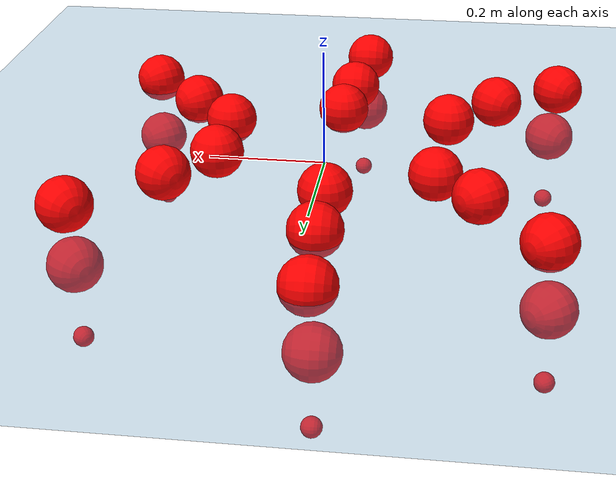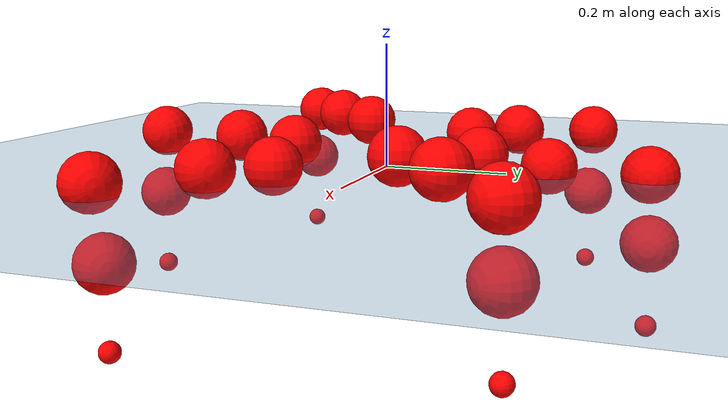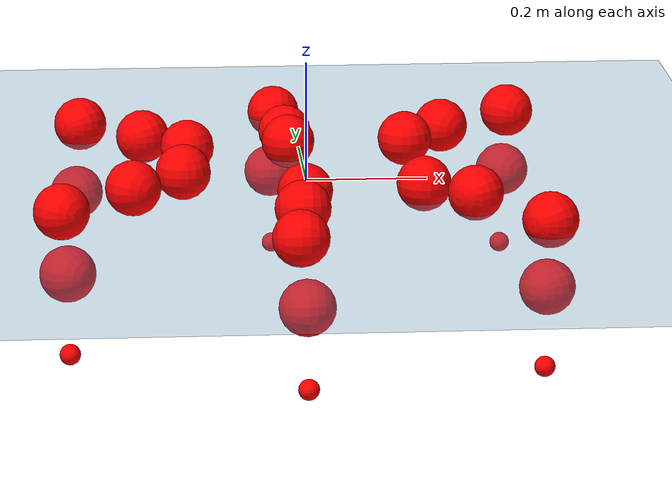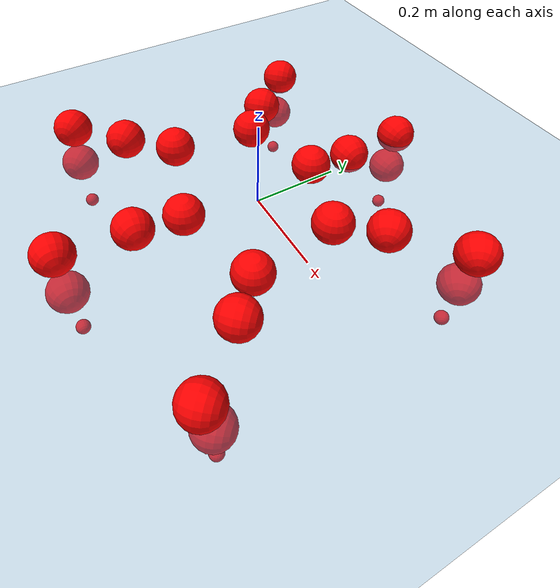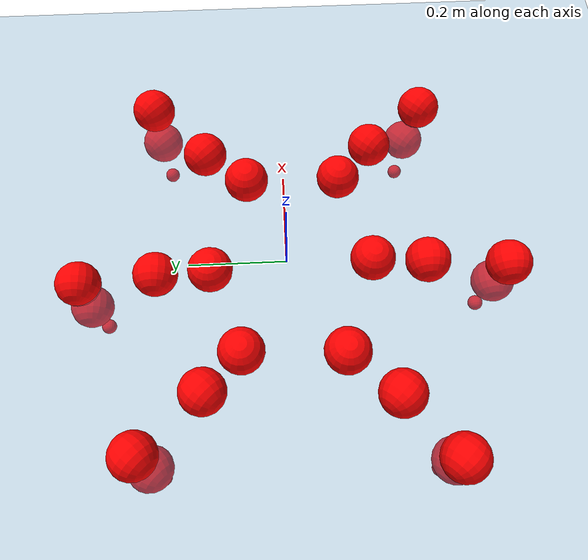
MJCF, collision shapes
<mujoco model="Golem">
  <compiler angle="radian" assetdir="assets" balanceinertia="true" inertiafromgeom="false"/>

  <option timestep="0.005" density="1.2" viscosity="2e-05"/>

  <size nkey="1"/>

  <visual>
    <quality shadowsize="8192"/>
    <map shadowclip="0.5"/>
  </visual>

  <default>
    <default class="/">
      <joint armature="0.01" damping="0.01" frictionloss="0.01"/>
      <geom contype="0" conaffinity="0" group="1" solref="-1000 -80"/>
      <site size="0.01 0.005 0.005" group="5"/>
      <general forcelimited="true" biastype="affine" gainprm="25" biasprm="0 -25 -0.5"/>
      <default class="visual">
        <geom type="mesh" group="2"/>
      </default>
      <default class="collision">
        <geom group="3"/>
      </default>
      <default class="foot">
        <geom size="0.01 0 0" condim="6" group="4" priority="1" solimp="0.015 1 0.01"/>
      </default>
      <default class="reward_collision_sphere">
        <geom group="5" rgba="1 0 0 1"/>
      </default>
    </default>
  </default>

  <asset>
    <texture type="skybox" colorspace="auto" name="//unnamed_texture_0" builtin="gradient" rgb1="0.95 0.95 0.95" rgb2="0.95 0.95 0.95" width="100" height="600"/>
    <texture type="2d" colorspace="auto" name="texplane" builtin="checker" rgb1="0.345 0.575 0.748" rgb2="0.345 0.575 0.748" markrgb="1 1 1" width="512" height="512"/>
    <material name="MatPlane" class="/" texture="texplane" texuniform="true" texrepeat="2 2" specular="0.9"/>
    <mesh name="body" class="/" file="body.stl" scale="0.001 0.001 0.001"/>
    <mesh name="coxa" class="/" file="coxa.stl" scale="0.001 0.001 0.001"/>
    <mesh name="femur" class="/" file="femur.stl" scale="0.001 0.001 0.001"/>
    <mesh name="tibia" class="/" file="tibia.stl" scale="0.001 0.001 0.001"/>
    <mesh name="tarsus" class="/" file="tarsus.stl" scale="0.001 0.001 0.001"/>
  </asset>

  <worldbody>
    <geom name="floor" class="/" size="100 100 0.125" type="plane" group="0" material="MatPlane"/>
    <light name="toplight_shadow" class="/" pos="0 0 5" dir="0.0990148 0.0990148 -0.990148" type="directional" ambient="0.04 0.04 0.04" diffuse="0.55 0.55 0.55" specular="0.12 0.12 0.12"/>
    <light name="toplight_fill" class="/" pos="0 0 5" dir="0.0990148 0.0990148 -0.990148" type="directional" castshadow="false" ambient="0.04 0.04 0.04" diffuse="0.3 0.3 0.3" specular="0.08 0.08 0.08"/>
    <body name="trunk" pos="-0.012219 -0.00710079 -0.00643023" quat="1 0.000127566 -7.70762e-05 -4.27267e-05">
      <inertial pos="-0.00287928 -0.00165353 -0.00353341" quat="0.999987 -0.00262159 0.00440428 -0.000349751" mass="5.48666" diaginertia="0.0373359 0.0752932 0.0011468"/>
      <joint name="//unnamed_joint_0" type="free"/>
      <geom name="//unnamed_geom_1" class="/" pos="0 0 0.0415468" quat="1 0 0 0" type="mesh" rgba="0.9 0.9 0.9 1" mesh="body"/>
      <site name="imu" class="/" pos="0.105454 -0.0543369 0.0484443" size="0.0112561"/>
      <camera name="track" class="/" pos="0 -2.96171 0" quat="0.707107 0.707107 0 0" mode="trackcom"/>
      <camera name="ego_camera" class="/" pos="0.162086 0 0.0649168" quat="-0.5 -0.5 0.5 0.5"/>
      <body name="coxa_RR" pos="-0.221633 -0.123058 0.0538351" quat="0.382684 -5.4154e-05 6.74325e-05 -0.923879">
        <inertial pos="-0.00153707 0.0129253 0.00526362" quat="0.99909 -0.00763993 -0.0400576 0.0124696" mass="0.323771" diaginertia="0.0325218 0.0770745 0.0012563"/>
        <joint name="coxa_joint_RR" class="/" pos="0 0 0" axis="-0.0221005 -0.0146265 -0.999649" stiffness="0.0557536" range="-3.16123 3.15708" armature="0.0165202" damping="0.0268821" frictionloss="0.0111305"/>
        <geom name="//unnamed_geom_2" class="/" type="mesh" rgba="0.2 0.2 0.2 1" mesh="coxa"/>
        <geom name="//unnamed_geom_3" class="reward_collision_sphere" size="0.0450245" pos="-0.0374044 0 0"/>
        <body name="femur_RR" pos="0.085697 0.0061034 0.00104372" quat="0.500448 -0.499733 0.500166 0.499653">
          <inertial pos="0.00574231 0.00449399 -0.00114804" quat="0.999851 0.00701224 -0.012299 -0.0099008" mass="0.291933" diaginertia="0.0306437 0.0696037 0.000971835"/>
          <joint name="femur_joint_RR" class="/" pos="0 0 0" axis="0.0109866 -0.0104579 -0.999885" stiffness="0.0574481" range="-2.92466 3.30622" armature="0.0128342" damping="0.00861352" frictionloss="0.005548"/>
          <geom name="//unnamed_geom_4" class="/" type="mesh" rgba="0.9 0.9 0.9 1" mesh="femur"/>
          <geom name="//unnamed_geom_5" class="reward_collision_sphere" size="0.0450245"/>
          <body name="tibia_RR" pos="0.00852586 -0.148275 -0.0131182" quat="-0.000789472 0.99998 0.00111217 0.00621527">
            <inertial pos="0.0107893 0.00168097 -0.0015148" quat="0.999985 -0.00515529 -0.00186621 0.00085048" mass="0.274222" diaginertia="0.0329296 0.0805088 0.00137467"/>
            <joint name="tibia_joint_RR" class="/" pos="0 0 0" axis="-0.0250609 0.0466283 0.998598" range="-3.24557 2.99139" armature="0.0119462" damping="0.0279026" frictionloss="0.0114233"/>
            <geom name="//unnamed_geom_6" class="/" type="mesh" rgba="0.2 0.2 0.2 1" mesh="tibia"/>
            <geom name="//unnamed_geom_7" class="reward_collision_sphere" size="0.0450245"/>
            <body name="tarsus_RR" pos="0.100134 0.000307128 -0.0102908" quat="1 -9.99225e-05 1.13603e-05 0.000174345">
              <inertial pos="0.064265 0.00101603 -0.00558017" quat="0.491462 0.510253 0.499296 0.498809" mass="0.288058" diaginertia="0.0295166 0.0674079 0.00117183"/>
              <joint name="tarsus_joint_RR" class="/" pos="0 0 0" axis="-0.00251635 -0.00109889 0.999996" range="-2.92615 2.98405" armature="0.0129135" damping="0.0322051" frictionloss="0.0144969"/>
              <geom name="//unnamed_geom_8" class="/" type="mesh" rgba="0.9 0.9 0.9 1" mesh="tarsus"/>
              <geom name="foot_1" class="foot" size="0.0112752" pos="0.139643 0 0" quat="0 -0.707107 0 0.707107"/>
              <geom name="//unnamed_geom_10" class="reward_collision_sphere" size="0.0450245"/>
              <geom name="//unnamed_geom_11" class="reward_collision_sphere" size="0.0168842" pos="0.134033 0 0"/>
              <site name="foot_1" class="foot" pos="0.139643 0 0" quat="0 -0.707107 0 0.707107" size="0.0112561"/>
            </body>
          </body>
        </body>
      </body>
      <body name="coxa_RM" pos="-0.00125051 -0.201171 0.0378464" quat="0.706662 0.00274536 -0.00255523 -0.707541">
        <inertial pos="-0.0087697 0.00100836 0.00552182" quat="0.999632 -0.00192639 -0.00178834 -0.0270064" mass="0.299947" diaginertia="0.0321009 0.0814069 0.00102377"/>
        <joint name="coxa_joint_RM" class="/" pos="0 0 0" axis="0.00137413 0.0106031 -0.999943" range="-3.05157 3.104" armature="0.0101539" damping="0.0514615" frictionloss="0.0191346"/>
        <geom name="//unnamed_geom_12" class="/" type="mesh" rgba="0.2 0.2 0.2 1" mesh="coxa"/>
        <geom name="//unnamed_geom_13" class="reward_collision_sphere" size="0.0450245" pos="-0.0374044 0 0"/>
        <body name="femur_RM" pos="0.0705479 -0.0101923 0.00373772" quat="0.504238 -0.498216 0.496438 0.501073">
          <inertial pos="-0.00239699 0.00485143 0.00021331" quat="0.999791 -0.0168589 -0.00558098 0.010167" mass="0.236576" diaginertia="0.0251109 0.0670392 0.00098374"/>
          <joint name="femur_joint_RM" class="/" pos="0 0 0" axis="-0.0141894 -0.0327333 -0.999363" range="-3.13943 3.11592" armature="0.0145058" damping="0" frictionloss="0.0110895"/>
          <geom name="//unnamed_geom_14" class="/" type="mesh" rgba="0.9 0.9 0.9 1" mesh="femur"/>
          <geom name="//unnamed_geom_15" class="reward_collision_sphere" size="0.0450245"/>
          <body name="tibia_RM" pos="0.00112741 -0.159216 -0.0127187" quat="7.8659e-05 1 0.000105572 -0.000311373">
            <inertial pos="-0.00811404 0.0126042 0.00140323" quat="0.998473 0.025483 0.0476191 0.0116447" mass="0.340897" diaginertia="0.0312102 0.0627617 0.00123293"/>
            <joint name="tibia_joint_RM" class="/" pos="0 0 0" axis="-0.00626633 -0.00642513 0.99996" stiffness="0.00112851" range="-2.91795 2.8606" armature="0.0118493" damping="0.0188641" frictionloss="0.00993865"/>
            <geom name="//unnamed_geom_16" class="/" type="mesh" rgba="0.2 0.2 0.2 1" mesh="tibia"/>
            <geom name="//unnamed_geom_17" class="reward_collision_sphere" size="0.0450245"/>
            <body name="tarsus_RM" pos="0.111992 0.00180336 -0.00781424" quat="1 0.000322243 -0.000336553 0.000403454">
              <inertial pos="0.0729203 0.00798554 -0.00908986" quat="0.548967 0.469189 0.502335 0.47556" mass="0.239247" diaginertia="0.0339944 0.0771061 0.00128161"/>
              <joint name="tarsus_joint_RM" class="/" pos="0 0 0" axis="-0.000274546 -0.000279866 1" stiffness="0.0413612" range="-3.29184 3.19941" armature="0.00843159" damping="0" frictionloss="0.0104503"/>
              <geom name="//unnamed_geom_18" class="/" type="mesh" rgba="0.9 0.9 0.9 1" mesh="tarsus"/>
              <geom name="foot_2" class="foot" size="0.0100651" pos="0.139643 0 0" quat="0 -0.707107 0 0.707107"/>
              <geom name="//unnamed_geom_20" class="reward_collision_sphere" size="0.0450245"/>
              <geom name="//unnamed_geom_21" class="reward_collision_sphere" size="0.0168842" pos="0.134033 0 0"/>
              <site name="foot_2" class="foot" pos="0.139643 0 0" quat="0 -0.707107 0 0.707107" size="0.0112561"/>
            </body>
          </body>
        </body>
      </body>
      <body name="coxa_RF" pos="0.223106 -0.135453 0.0308279" quat="0.923951 -0.000127794 -0.000501906 -0.382512">
        <inertial pos="0.00354434 -0.00657781 0.000916076" quat="0.999996 0.00218765 -0.00188047 -0.00054452" mass="0.281561" diaginertia="0.0299906 0.0664522 0.00120634"/>
        <joint name="coxa_joint_RF" class="/" pos="0 0 0" axis="-0.00011988 -0.000357882 -1" stiffness="0.00701341" range="-3.11816 3.08619" armature="0.00547175" damping="0.0088801" frictionloss="0.0114655"/>
        <geom name="//unnamed_geom_22" class="/" type="mesh" rgba="0.2 0.2 0.2 1" mesh="coxa"/>
        <geom name="//unnamed_geom_23" class="reward_collision_sphere" size="0.0450245" pos="-0.0374044 0 0"/>
        <body name="femur_RF" pos="0.0681146 0.00227912 0.00408847" quat="0.498693 -0.499463 0.501505 0.500335">
          <inertial pos="-0.00484369 0.00772221 0.000990096" quat="0.999678 -0.0119241 -0.0168182 0.0148193" mass="0.307724" diaginertia="0.0299821 0.0832419 0.00105607"/>
          <joint name="femur_joint_RF" class="/" pos="0 0 0" axis="0.00509592 0.00104531 -0.999986" range="-2.8885 3.06793" armature="0.0176718" damping="0.00297922" frictionloss="0.00596779"/>
          <geom name="//unnamed_geom_24" class="/" type="mesh" rgba="0.9 0.9 0.9 1" mesh="femur"/>
          <geom name="//unnamed_geom_25" class="reward_collision_sphere" size="0.0450245"/>
          <body name="tibia_RF" pos="0.00938292 -0.161838 -0.0131682" quat="-6.18854e-05 1 -0.000584012 0.000245116">
            <inertial pos="0.0130093 -0.000319702 0.00194088" quat="1 7.88576e-05 -0.000121281 4.30363e-05" mass="0.237621" diaginertia="0.0319536 0.0628449 0.00112952"/>
            <joint name="tibia_joint_RF" class="/" pos="0 0 0" axis="0.0584194 0.0231789 0.998023" range="-3.08488 3.3925" armature="0.0134542" damping="0.00399585" frictionloss="0.0114162"/>
            <geom name="//unnamed_geom_26" class="/" type="mesh" rgba="0.2 0.2 0.2 1" mesh="tibia"/>
            <geom name="//unnamed_geom_27" class="reward_collision_sphere" size="0.0450245"/>
            <body name="tarsus_RF" pos="0.116471 -0.0115666 -0.0103854" quat="0.999982 0.00455286 -0.00356011 -0.00148998">
              <inertial pos="0.0740998 -0.00183996 0.000772288" quat="0.498824 0.502834 0.497179 0.501143" mass="0.288559" diaginertia="0.0298594 0.0736823 0.00106417"/>
              <joint name="tarsus_joint_RF" class="/" pos="0 0 0" axis="0.0353013 0.0108662 0.999318" stiffness="0.0224167" range="-3.04711 3.19128" armature="0.00747305" damping="0.00339866" frictionloss="0.0146693"/>
              <geom name="//unnamed_geom_28" class="/" type="mesh" rgba="0.9 0.9 0.9 1" mesh="tarsus"/>
              <geom name="foot_3" class="foot" size="0.00745623" pos="0.139643 0 0" quat="0 -0.707107 0 0.707107"/>
              <geom name="//unnamed_geom_30" class="reward_collision_sphere" size="0.0450245"/>
              <geom name="//unnamed_geom_31" class="reward_collision_sphere" size="0.0168842" pos="0.134033 0 0"/>
              <site name="foot_3" class="foot" pos="0.139643 0 0" quat="0 -0.707107 0 0.707107" size="0.0112561"/>
            </body>
          </body>
        </body>
      </body>
      <body name="coxa_LR" pos="-0.20915 0.126409 0.0410609" quat="0.382774 0.000132093 -5.31801e-05 0.923842">
        <inertial pos="0.0116983 -0.00605943 0.0135836" quat="0.997984 -0.0566023 -0.0255262 0.0131103" mass="0.280165" diaginertia="0.0272048 0.0524928 0.00098032"/>
        <joint name="coxa_joint_LR" class="/" pos="0 0 0" axis="-0.056969 0.018327 -0.998208" range="-3.07779 3.26614" armature="0.0151717" damping="0.0177279" frictionloss="0.0167248"/>
        <geom name="//unnamed_geom_32" class="/" type="mesh" rgba="0.2 0.2 0.2 1" mesh="coxa"/>
        <geom name="//unnamed_geom_33" class="reward_collision_sphere" size="0.0450245" pos="-0.0374044 0 0"/>
        <body name="femur_LR" pos="0.0647304 0.0013813 -0.000433731" quat="0.500147 -0.500127 0.500042 0.499684">
          <inertial pos="0.00445506 -9.42513e-06 0.000146708" quat="0.999451 -0.0210976 0.0223714 -0.0123387" mass="0.284901" diaginertia="0.0311407 0.0634076 0.00116726"/>
          <joint name="femur_joint_LR" class="/" pos="0 0 0" axis="-0.0253991 -0.0253835 0.999355" range="-3.20607 3.13143" armature="0.0103008" damping="0.0035025" frictionloss="0.0186733"/>
          <geom name="//unnamed_geom_34" class="/" type="mesh" rgba="0.9 0.9 0.9 1" mesh="femur"/>
          <geom name="//unnamed_geom_35" class="reward_collision_sphere" size="0.0450245"/>
          <body name="tibia_LR" pos="0.0089804 -0.159843 -0.0107416" quat="0.00171149 0.999984 -0.00396022 0.00377143">
            <inertial pos="0.000510941 0.000665066 -0.000391553" quat="0.99998 0.00394784 -0.00488114 -0.000127896" mass="0.251577" diaginertia="0.0281049 0.06852 0.00107348"/>
            <joint name="tibia_joint_LR" class="/" pos="0 0 0" axis="0.0277497 -0.0185717 -0.999442" range="-3.01545 3.33204" armature="0.011182" damping="0.0155488" frictionloss="0.0113923"/>
            <geom name="//unnamed_geom_36" class="/" type="mesh" rgba="0.2 0.2 0.2 1" mesh="tibia"/>
            <geom name="//unnamed_geom_37" class="reward_collision_sphere" size="0.0450245"/>
            <body name="tarsus_LR" pos="0.120493 0.000228785 -0.00945651" quat="0.999982 -0.000314846 0.00553338 0.00226562">
              <inertial pos="0.0617706 0.000680632 0.0129106" quat="0.502637 0.50443 0.496455 0.496427" mass="0.29831" diaginertia="0.0292646 0.0754034 0.0010967"/>
              <joint name="tarsus_joint_LR" class="/" pos="0 0 0" axis="0.0497394 -0.024147 -0.99847" range="-2.93406 3.34447" armature="0.0111374" damping="0.0286839" frictionloss="0.0089609"/>
              <geom name="//unnamed_geom_38" class="/" type="mesh" rgba="0.9 0.9 0.9 1" mesh="tarsus"/>
              <geom name="foot_4" class="foot" size="0.00830821" pos="0.139643 0 0" quat="0.707107 0 -0.707107 0"/>
              <geom name="//unnamed_geom_40" class="reward_collision_sphere" size="0.0450245"/>
              <geom name="//unnamed_geom_41" class="reward_collision_sphere" size="0.0168842" pos="0.134033 0 0"/>
              <site name="foot_4" class="foot" pos="0.139643 0 0" quat="0.707107 0 -0.707107 0" size="0.0112561"/>
            </body>
          </body>
        </body>
      </body>
      <body name="coxa_LM" pos="-0.00951553 0.198104 0.0312455" quat="0.705473 0.00145284 0.000665273 0.708735">
        <inertial pos="-0.00275894 0.00405854 0.00360701" quat="0.99925 -0.0214717 -0.00460606 0.0318866" mass="0.3006" diaginertia="0.0342764 0.074304 0.00120126"/>
        <joint name="coxa_joint_LM" class="/" pos="0 0 0" axis="-0.00178549 0.00434288 -0.999989" stiffness="0.037592" range="-3.34314 3.15121" armature="0.00814535" damping="0" frictionloss="0.0058309"/>
        <geom name="//unnamed_geom_42" class="/" type="mesh" rgba="0.2 0.2 0.2 1" mesh="coxa"/>
        <geom name="//unnamed_geom_43" class="reward_collision_sphere" size="0.0450245" pos="-0.0374044 0 0"/>
        <body name="femur_LM" pos="0.0734143 -0.00105608 -0.0126981" quat="0.498459 -0.501666 0.5025 0.497356">
          <inertial pos="-0.00574849 0.0102714 -0.0133846" quat="0.998158 0.03673 -0.0463755 0.0134238" mass="0.275344" diaginertia="0.0267477 0.0804917 0.00104905"/>
          <joint name="femur_joint_LM" class="/" pos="0 0 0" axis="0.0172647 -0.0340852 0.99927" range="-3.12135 3.33479" armature="0.00771314" damping="0.0056791" frictionloss="0.0120309"/>
          <geom name="//unnamed_geom_44" class="/" type="mesh" rgba="0.9 0.9 0.9 1" mesh="femur"/>
          <geom name="//unnamed_geom_45" class="reward_collision_sphere" size="0.0450245"/>
          <body name="tibia_LM" pos="0.00628759 -0.154333 0.0106636" quat="0.000481734 0.999978 -0.00437117 -0.00506092">
            <inertial pos="-0.00225073 0.0140143 -0.00364821" quat="0.999218 0.027263 0.024804 -0.0143385" mass="0.298999" diaginertia="0.0285356 0.0610105 0.00109238"/>
            <joint name="tibia_joint_LM" class="/" pos="0 0 0" axis="-0.013609 0.00918281 -0.999865" stiffness="0.0167278" range="-3.11452 3.06831" armature="0.00547171" damping="0.0687284" frictionloss="0.0148539"/>
            <geom name="//unnamed_geom_46" class="/" type="mesh" rgba="0.2 0.2 0.2 1" mesh="tibia"/>
            <geom name="//unnamed_geom_47" class="reward_collision_sphere" size="0.0450245"/>
            <body name="tarsus_LM" pos="0.110274 0.00207214 -0.0075345" quat="0.999976 -0.00678034 -0.00127775 0.00101145">
              <inertial pos="0.0832101 -0.00106861 0.00636703" quat="0.499897 0.499425 0.500649 0.500029" mass="0.298639" diaginertia="0.0371784 0.0852479 0.00119425"/>
              <joint name="tarsus_joint_LM" class="/" pos="0 0 0" axis="0.0030605 0.00298848 -0.999991" stiffness="0.0172212" range="-3.40532 3.08676" armature="0.00500332" damping="0.0760685" frictionloss="0.00859038"/>
              <geom name="//unnamed_geom_48" class="/" type="mesh" rgba="0.9 0.9 0.9 1" mesh="tarsus"/>
              <geom name="foot_5" class="foot" size="0.00941429" pos="0.139643 0 0" quat="0.707107 0 -0.707107 0"/>
              <geom name="//unnamed_geom_50" class="reward_collision_sphere" size="0.0450245"/>
              <geom name="//unnamed_geom_51" class="reward_collision_sphere" size="0.0168842" pos="0.134033 0 0"/>
              <site name="foot_5" class="foot" pos="0.139643 0 0" quat="0.707107 0 -0.707107 0" size="0.0112561"/>
            </body>
          </body>
        </body>
      </body>
      <body name="coxa_LF" pos="0.208471 0.110751 0.0541383" quat="0.923846 -0.000102583 0.000113882 0.382764">
        <inertial pos="2.73443e-05 -4.49536e-05 0.00463893" quat="0.999134 0.0166582 0.0345689 -0.0160631" mass="0.358259" diaginertia="0.0350707 0.0838533 0.00134834"/>
        <joint name="coxa_joint_LF" class="/" pos="0 0 0" axis="0.000138133 0.00217513 -0.999998" stiffness="0.0135253" range="-3.03334 2.87495" armature="0.00556154" damping="0.0778166" frictionloss="0.0158021"/>
        <geom name="//unnamed_geom_52" class="/" type="mesh" rgba="0.2 0.2 0.2 1" mesh="coxa"/>
        <geom name="//unnamed_geom_53" class="reward_collision_sphere" size="0.0450245" pos="-0.0374044 0 0"/>
        <body name="femur_LF" pos="0.073342 0.0120871 -0.00244932" quat="0.502344 -0.495023 0.500831 0.501768">
          <inertial pos="-0.0129964 0.000628087 0.000312603" quat="0.999897 -0.0103773 0.00717758 0.00688753" mass="0.302348" diaginertia="0.0316264 0.072751 0.00131344"/>
          <joint name="femur_joint_LF" class="/" pos="0 0 0" axis="0.00171329 -5.59682e-06 0.999999" range="-3.28976 3.10412" armature="0.00553542" damping="0" frictionloss="0.0127529"/>
          <geom name="//unnamed_geom_54" class="/" type="mesh" rgba="0.9 0.9 0.9 1" mesh="femur"/>
          <geom name="//unnamed_geom_55" class="reward_collision_sphere" size="0.0450245"/>
          <body name="tibia_LF" pos="0.00530914 -0.171296 -0.00735129" quat="-5.99627e-06 1 2.46382e-05 -1.77459e-06">
            <inertial pos="0.00182733 -0.00895807 -0.0052104" quat="0.999878 -0.0146276 0.00539766 0.000344279" mass="0.302724" diaginertia="0.0310928 0.0707731 0.00115899"/>
            <joint name="tibia_joint_LF" class="/" pos="0 0 0" axis="-0.00762872 0.00141185 -0.99997" stiffness="0.0352316" range="-3.14132 3.1411" armature="0.0158153" damping="0.0472531" frictionloss="0.00784199"/>
            <geom name="//unnamed_geom_56" class="/" type="mesh" rgba="0.2 0.2 0.2 1" mesh="tibia"/>
            <geom name="//unnamed_geom_57" class="reward_collision_sphere" size="0.0450245"/>
            <body name="tarsus_LF" pos="0.106449 -0.00392422 -0.00362811" quat="0.999981 0.00115246 0.00524904 0.00290863">
              <inertial pos="0.0736634 0.00114523 0.00580588" quat="0.504054 0.462761 0.514015 0.517272" mass="0.252127" diaginertia="0.0290518 0.0601716 0.00102544"/>
              <joint name="tarsus_joint_LF" class="/" pos="0 0 0" axis="0.0196155 0.0220474 -0.999564" range="-2.95255 3.02334" armature="0.0119883" damping="0.0743694" frictionloss="0.0111115"/>
              <geom name="//unnamed_geom_58" class="/" type="mesh" rgba="0.9 0.9 0.9 1" mesh="tarsus"/>
              <geom name="foot_6" class="foot" size="0.0101629" pos="0.139643 0 0" quat="0.707107 0 -0.707107 0"/>
              <geom name="//unnamed_geom_60" class="reward_collision_sphere" size="0.0450245"/>
              <geom name="//unnamed_geom_61" class="reward_collision_sphere" size="0.0168842" pos="0.134033 0 0"/>
              <site name="foot_6" class="foot" pos="0.139643 0 0" quat="0.707107 0 -0.707107 0" size="0.0112561"/>
            </body>
          </body>
        </body>
      </body>
    </body>
  </worldbody>

  <contact>
    <pair class="/" geom1="floor" geom2="foot_1" name="//unnamed_contact_0"/>
    <pair class="/" geom1="floor" geom2="foot_2" name="//unnamed_contact_1"/>
    <pair class="/" geom1="floor" geom2="foot_3" name="//unnamed_contact_2"/>
    <pair class="/" geom1="floor" geom2="foot_4" name="//unnamed_contact_3"/>
    <pair class="/" geom1="floor" geom2="foot_5" name="//unnamed_contact_4"/>
    <pair class="/" geom1="floor" geom2="foot_6" name="//unnamed_contact_5"/>
  </contact>

  <actuator>
    <general name="coxa_joint_RR" class="/" joint="coxa_joint_RR" forcerange="-8.1454 8.1454" gainprm="25.6766" biasprm="0 -25.6766 -0.564036"/>
    <general name="femur_joint_RR" class="/" joint="femur_joint_RR" forcerange="-7.99734 7.99734" gainprm="25.6766" biasprm="0 -25.6766 -0.564036"/>
    <general name="tibia_joint_RR" class="/" joint="tibia_joint_RR" forcerange="-8.66431 8.66431" gainprm="25.6766" biasprm="0 -25.6766 -0.564036"/>
    <general name="tarsus_joint_RR" class="/" joint="tarsus_joint_RR" forcerange="-5.38999 5.38999" gainprm="25.6766" biasprm="0 -25.6766 -0.564036"/>
    <general name="coxa_joint_RM" class="/" joint="coxa_joint_RM" forcerange="-12.1273 12.1273" gainprm="25.6766" biasprm="0 -25.6766 -0.564036"/>
    <general name="femur_joint_RM" class="/" joint="femur_joint_RM" forcerange="-8.79586 8.79586" gainprm="25.6766" biasprm="0 -25.6766 -0.564036"/>
    <general name="tibia_joint_RM" class="/" joint="tibia_joint_RM" forcerange="-10.501 10.501" gainprm="25.6766" biasprm="0 -25.6766 -0.564036"/>
    <general name="tarsus_joint_RM" class="/" joint="tarsus_joint_RM" forcerange="-8.18705 8.18705" gainprm="25.6766" biasprm="0 -25.6766 -0.564036"/>
    <general name="coxa_joint_RF" class="/" joint="coxa_joint_RF" forcerange="-11.8703 11.8703" gainprm="25.6766" biasprm="0 -25.6766 -0.564036"/>
    <general name="femur_joint_RF" class="/" joint="femur_joint_RF" forcerange="-10.2501 10.2501" gainprm="25.6766" biasprm="0 -25.6766 -0.564036"/>
    <general name="tibia_joint_RF" class="/" joint="tibia_joint_RF" forcerange="-12.295 12.295" gainprm="25.6766" biasprm="0 -25.6766 -0.564036"/>
    <general name="tarsus_joint_RF" class="/" joint="tarsus_joint_RF" forcerange="-6.30382 6.30382" gainprm="25.6766" biasprm="0 -25.6766 -0.564036"/>
    <general name="coxa_joint_LR" class="/" joint="coxa_joint_LR" forcerange="-8.11611 8.11611" gainprm="25.6766" biasprm="0 -25.6766 -0.564036"/>
    <general name="femur_joint_LR" class="/" joint="femur_joint_LR" forcerange="-8.46136 8.46136" gainprm="25.6766" biasprm="0 -25.6766 -0.564036"/>
    <general name="tibia_joint_LR" class="/" joint="tibia_joint_LR" forcerange="-7.96831 7.96831" gainprm="25.6766" biasprm="0 -25.6766 -0.564036"/>
    <general name="tarsus_joint_LR" class="/" joint="tarsus_joint_LR" forcerange="-6.94267 6.94267" gainprm="25.6766" biasprm="0 -25.6766 -0.564036"/>
    <general name="coxa_joint_LM" class="/" joint="coxa_joint_LM" forcerange="-5.11994 5.11994" gainprm="25.6766" biasprm="0 -25.6766 -0.564036"/>
    <general name="femur_joint_LM" class="/" joint="femur_joint_LM" forcerange="-8.11371 8.11371" gainprm="25.6766" biasprm="0 -25.6766 -0.564036"/>
    <general name="tibia_joint_LM" class="/" joint="tibia_joint_LM" forcerange="-8.21769 8.21769" gainprm="25.6766" biasprm="0 -25.6766 -0.564036"/>
    <general name="tarsus_joint_LM" class="/" joint="tarsus_joint_LM" forcerange="-8.4468 8.4468" gainprm="25.6766" biasprm="0 -25.6766 -0.564036"/>
    <general name="coxa_joint_LF" class="/" joint="coxa_joint_LF" forcerange="-12.3925 12.3925" gainprm="25.6766" biasprm="0 -25.6766 -0.564036"/>
    <general name="femur_joint_LF" class="/" joint="femur_joint_LF" forcerange="-8.60655 8.60655" gainprm="25.6766" biasprm="0 -25.6766 -0.564036"/>
    <general name="tibia_joint_LF" class="/" joint="tibia_joint_LF" forcerange="-7.53437 7.53437" gainprm="25.6766" biasprm="0 -25.6766 -0.564036"/>
    <general name="tarsus_joint_LF" class="/" joint="tarsus_joint_LF" forcerange="-10.268 10.268" gainprm="25.6766" biasprm="0 -25.6766 -0.564036"/>
  </actuator>

  <sensor>
    <gyro site="imu" name="imu_angular_velocity"/>
    <velocimeter site="imu" name="imu_linear_velocity"/>
    <framelinvel objtype="site" objname="foot_1" name="foot_1_global_linear_velocity"/>
    <framelinvel objtype="site" objname="foot_2" name="foot_2_global_linear_velocity"/>
    <framelinvel objtype="site" objname="foot_3" name="foot_3_global_linear_velocity"/>
    <framelinvel objtype="site" objname="foot_4" name="foot_4_global_linear_velocity"/>
    <framelinvel objtype="site" objname="foot_5" name="foot_5_global_linear_velocity"/>
    <framelinvel objtype="site" objname="foot_6" name="foot_6_global_linear_velocity"/>
  </sensor>

  <keyframe>
    <key name="home" qpos="0 0 0.1457 1 0 0 0 0 0 0 0 0 0 0 0 0 0 0 0 0 0 0 0 0 0 0 0 0 0 0 0"/>
  </keyframe>
</mujoco>
